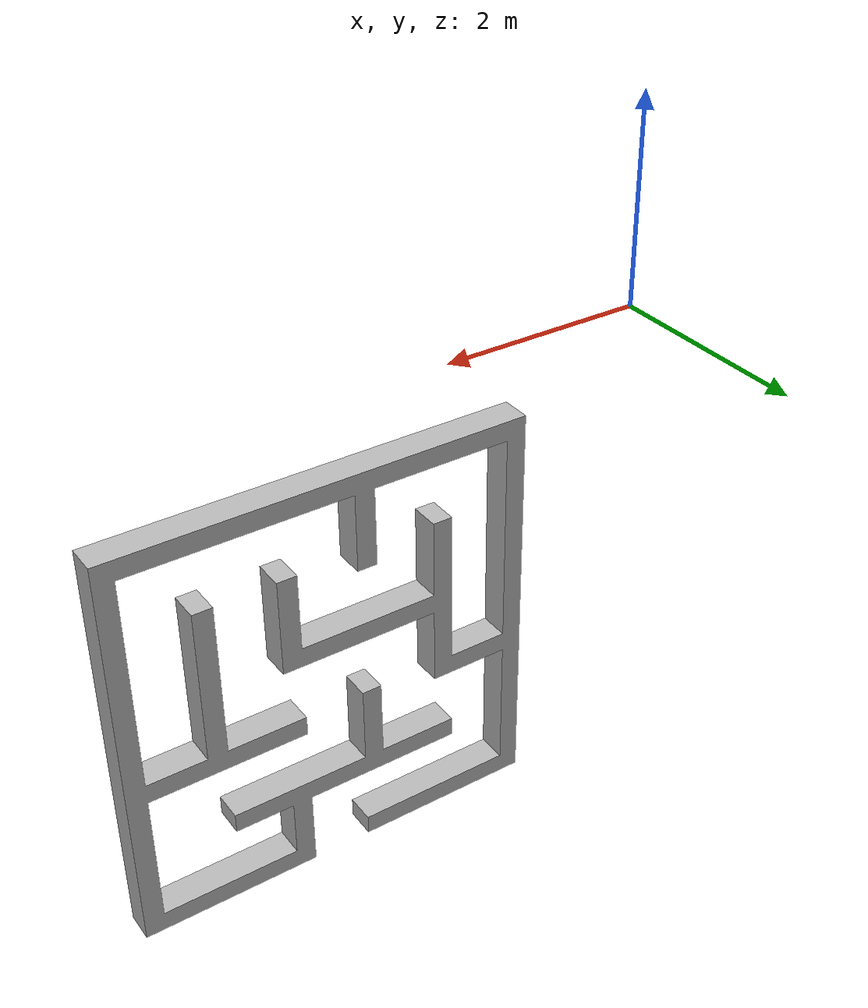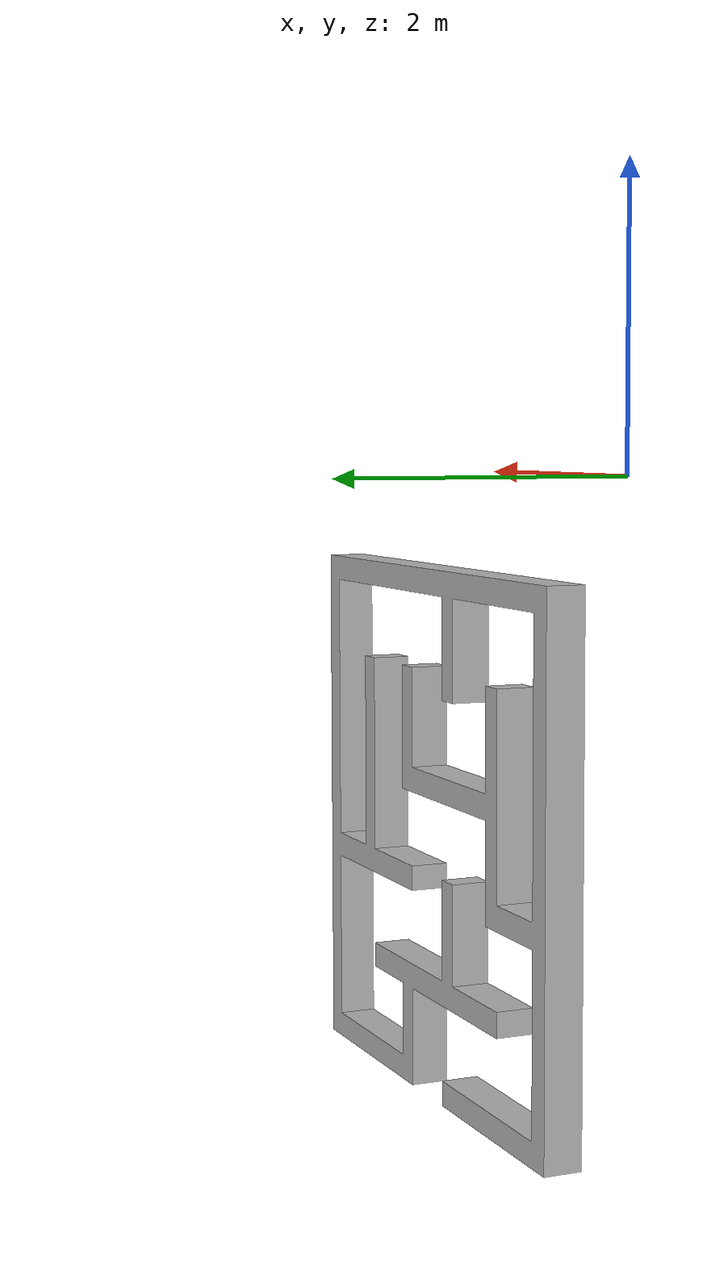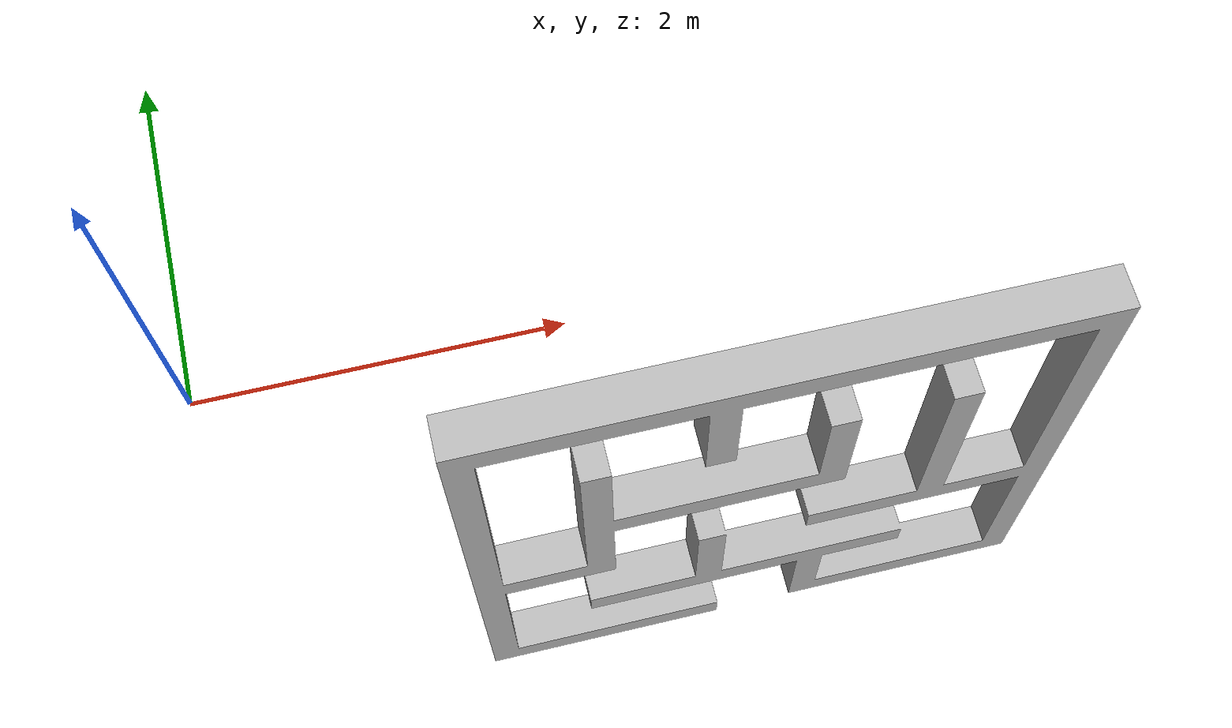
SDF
<?xml version="1.0" ?>
<sdf version="1.6">
  <model name="maze9">
    <pose>0 0 0 1.5708 0 0</pose>
    <static>true</static>
    <link name="link">
      <collision name="collision">
        <geometry>
          <mesh>
            <scale>0.001 0.001 0.001</scale>
            <uri>model://maze9/meshes/maze9.stl</uri>
          </mesh>
        </geometry>
      </collision>
      <visual name="visual">
        <geometry>

          <mesh>
            <scale>0.001 0.001 0.001</scale>
            <uri>model://maze9/meshes/maze9.stl</uri>
          </mesh>
        </geometry>
      </visual>
    </link>
  </model>
</sdf>
